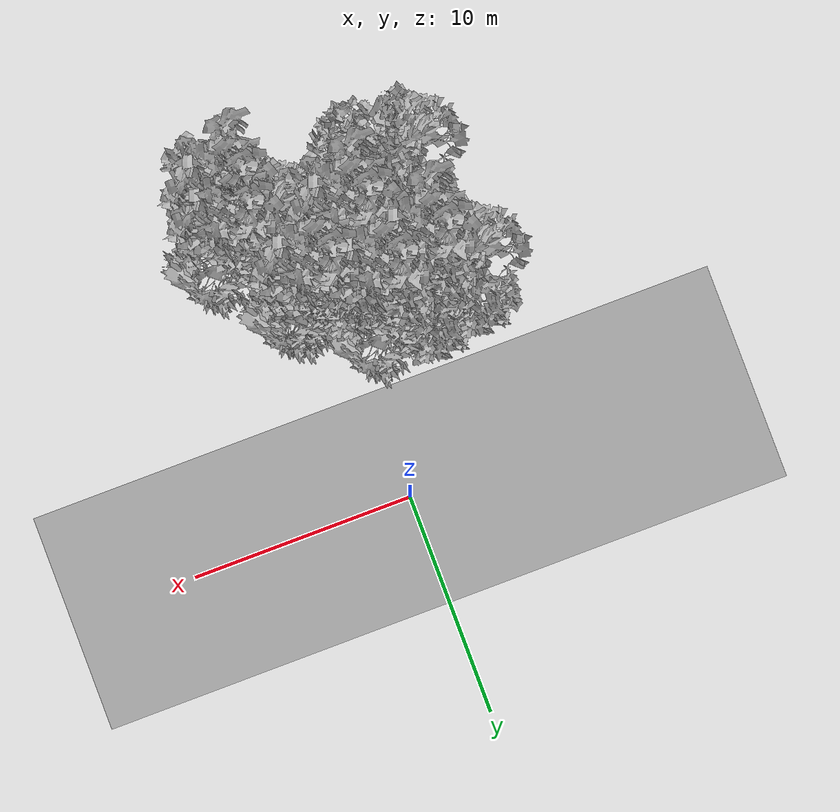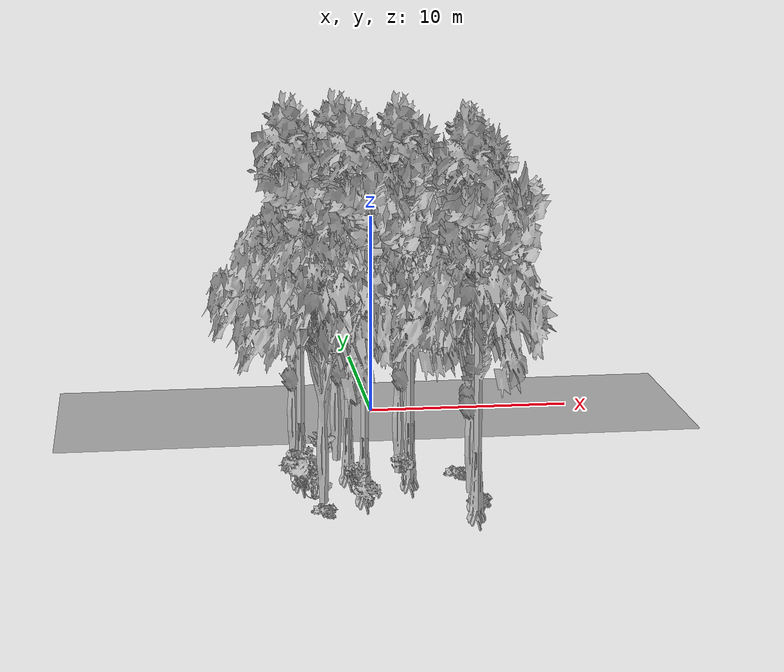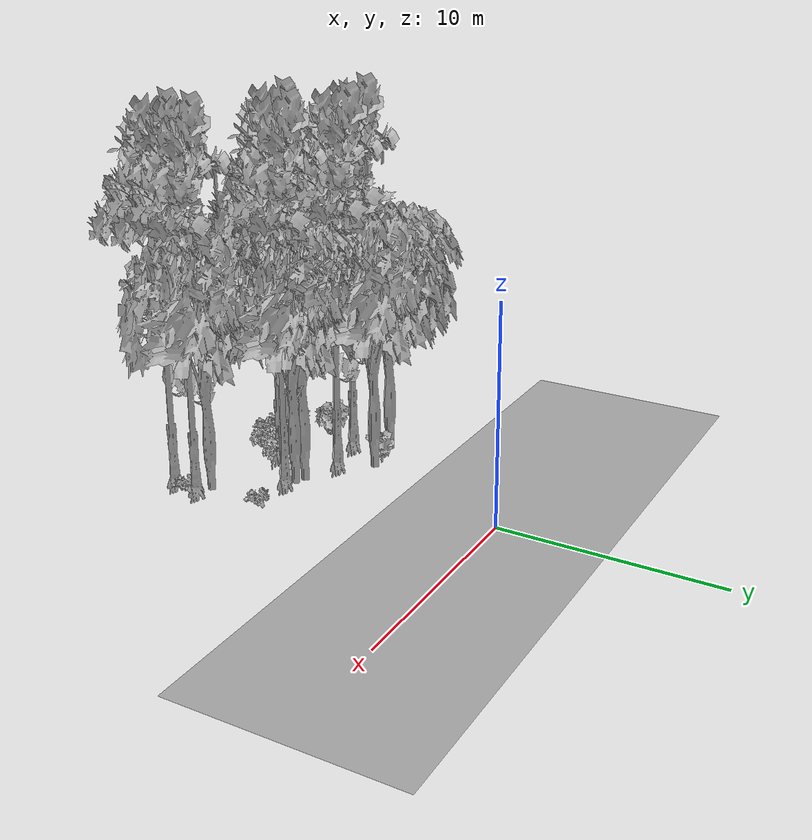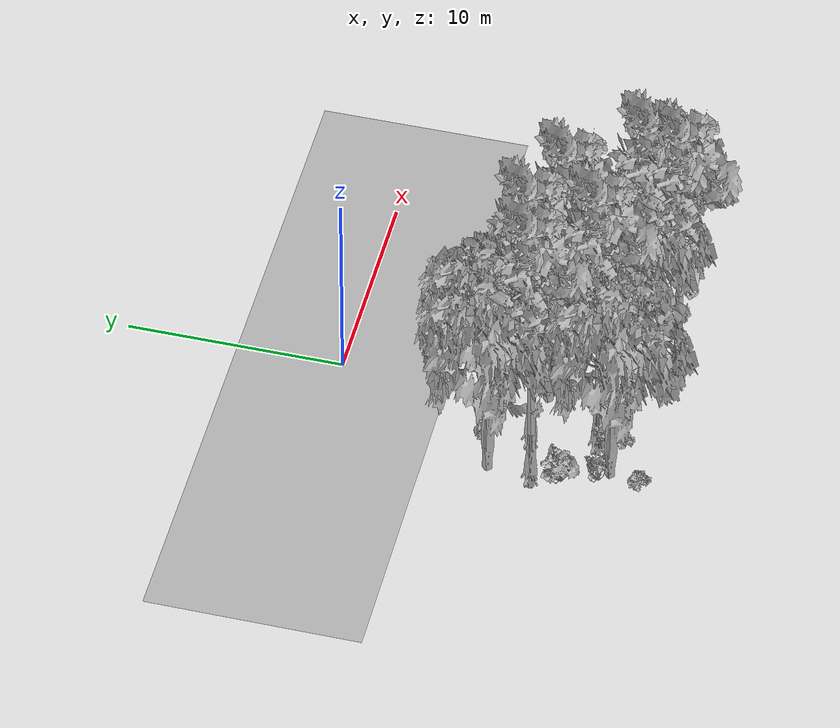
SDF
<sdf version="1.7">
 <world name="default">
  <model name="ground_plane">
   <static>1</static>
   <link name="link">
    <collision name="collision">
     <geometry><plane><normal>0 0 1</normal><size>100 100</size></plane></geometry>
     <surface><contact><ode><min_depth>0.01</min_depth><max_vel>0</max_vel></ode></contact></surface>
    </collision>
    <visual name="grass">
     <cast_shadows>0</cast_shadows>
     <geometry>
      <mesh>
       <scale>0.5814285714285714 0.18142857142857144 0.1</scale>
       <uri>file://grass_plane/meshes/grass_plane.dae</uri>
      </mesh>
     </geometry>
    </visual>
   </link>
  </model>
  <model name="Tree 73">
   <static>1</static>
   <pose>-4.603988198603076 -7.78976772718008 0 1.57079 -0 0</pose>
   <link name="link">
    <collision name="collision">
     <geometry><mesh><scale>3.5 5 3.5</scale><uri>model://tree_2/meshes/tree_2.obj</uri></mesh></geometry>
    </collision>
    <visual name="visual">
     <geometry><mesh><scale>3.5 5 3.5</scale><uri>model://tree_2/meshes/tree_2.obj</uri></mesh></geometry>
    </visual>
   </link>
  </model>
  <model name="Tree 140">
   <static>1</static>
   <pose>2.8255445464476665 -14.750124823121054 0 1.57079 -0 0</pose>
   <link name="link">
    <collision name="collision">
     <geometry><mesh><scale>3.5 5 3.5</scale><uri>model://tree_9/meshes/tree_9.obj</uri></mesh></geometry>
    </collision>
    <visual name="visual">
     <geometry><mesh><scale>3.5 5 3.5</scale><uri>model://tree_9/meshes/tree_9.obj</uri></mesh></geometry>
    </visual>
   </link>
  </model>
  <model name="Tree 162">
   <static>1</static>
   <pose>-3.751485183714408 -13.156626649994562 0 1.57079 -0 0</pose>
   <link name="link">
    <collision name="collision">
     <geometry><mesh><scale>3.5 5 3.5</scale><uri>model://tree_2/meshes/tree_2.obj</uri></mesh></geometry>
    </collision>
    <visual name="visual">
     <geometry><mesh><scale>3.5 5 3.5</scale><uri>model://tree_2/meshes/tree_2.obj</uri></mesh></geometry>
    </visual>
   </link>
  </model>
  <model name="Tree 232">
   <static>1</static>
   <pose>0.05023212983814318 -9.489935559217717 0 1.57079 -0 0</pose>
   <link name="link">
    <collision name="collision">
     <geometry><mesh><scale>3.5 5 3.5</scale><uri>model://tree_2/meshes/tree_2.obj</uri></mesh></geometry>
    </collision>
    <visual name="visual">
     <geometry><mesh><scale>3.5 5 3.5</scale><uri>model://tree_2/meshes/tree_2.obj</uri></mesh></geometry>
    </visual>
   </link>
  </model>
  <model name="Tree 270">
   <static>1</static>
   <pose>-2.1550973484761187 -9.197895704591286 0 1.57079 -0 0</pose>
   <link name="link">
    <collision name="collision">
     <geometry><mesh><scale>3.5 5 3.5</scale><uri>model://tree_9/meshes/tree_9.obj</uri></mesh></geometry>
    </collision>
    <visual name="visual">
     <geometry><mesh><scale>3.5 5 3.5</scale><uri>model://tree_9/meshes/tree_9.obj</uri></mesh></geometry>
    </visual>
   </link>
  </model>
  <model name="Tree 353">
   <static>1</static>
   <pose>0.5238656328667588 -10.318006733208723 0 1.57079 -0 0</pose>
   <link name="link">
    <collision name="collision">
     <geometry><mesh><scale>3.5 5 3.5</scale><uri>model://tree_9/meshes/tree_9.obj</uri></mesh></geometry>
    </collision>
    <visual name="visual">
     <geometry><mesh><scale>3.5 5 3.5</scale><uri>model://tree_9/meshes/tree_9.obj</uri></mesh></geometry>
    </visual>
   </link>
  </model>
  <model name="Tree 370">
   <static>1</static>
   <pose>3.0562831345720767 -13.35161339124226 0 1.57079 -0 0</pose>
   <link name="link">
    <collision name="collision">
     <geometry><mesh><scale>3.5 5 3.5</scale><uri>model://tree_9/meshes/tree_9.obj</uri></mesh></geometry>
    </collision>
    <visual name="visual">
     <geometry><mesh><scale>3.5 5 3.5</scale><uri>model://tree_9/meshes/tree_9.obj</uri></mesh></geometry>
    </visual>
   </link>
  </model>
  <model name="Tree 376">
   <static>1</static>
   <pose>-2.592192265908814 -7.419772875265309 0 1.57079 -0 0</pose>
   <link name="link">
    <collision name="collision">
     <geometry><mesh><scale>3.5 5 3.5</scale><uri>model://tree_2/meshes/tree_2.obj</uri></mesh></geometry>
    </collision>
    <visual name="visual">
     <geometry><mesh><scale>3.5 5 3.5</scale><uri>model://tree_2/meshes/tree_2.obj</uri></mesh></geometry>
    </visual>
   </link>
  </model>
  <model name="Tree 385">
   <static>1</static>
   <pose>0.5056600470343042 -9.68909409508705 0 1.57079 -0 0</pose>
   <link name="link">
    <collision name="collision">
     <geometry><mesh><scale>3.5 5 3.5</scale><uri>model://tree_2/meshes/tree_2.obj</uri></mesh></geometry>
    </collision>
    <visual name="visual">
     <geometry><mesh><scale>3.5 5 3.5</scale><uri>model://tree_2/meshes/tree_2.obj</uri></mesh></geometry>
    </visual>
   </link>
  </model>
  <model name="Tree 396">
   <static>1</static>
   <pose>-4.353938176681844 -9.70712114378107 0 1.57079 -0 0</pose>
   <link name="link">
    <collision name="collision">
     <geometry><mesh><scale>3.5 5 3.5</scale><uri>model://tree_9/meshes/tree_9.obj</uri></mesh></geometry>
    </collision>
    <visual name="visual">
     <geometry><mesh><scale>3.5 5 3.5</scale><uri>model://tree_9/meshes/tree_9.obj</uri></mesh></geometry>
    </visual>
   </link>
  </model>
  <model name="Tree 422">
   <static>1</static>
   <pose>-1.7455986087299067 -12.158941165423766 0 1.57079 -0 0</pose>
   <link name="link">
    <collision name="collision">
     <geometry><mesh><scale>3.5 5 3.5</scale><uri>model://tree_9/meshes/tree_9.obj</uri></mesh></geometry>
    </collision>
    <visual name="visual">
     <geometry><mesh><scale>3.5 5 3.5</scale><uri>model://tree_9/meshes/tree_9.obj</uri></mesh></geometry>
    </visual>
   </link>
  </model>
  <model name="Tree 436">
   <static>1</static>
   <pose>2.8407390285196357 -12.59180163920816 0 1.57079 -0 0</pose>
   <link name="link">
    <collision name="collision">
     <geometry><mesh><scale>3.5 5 3.5</scale><uri>model://tree_2/meshes/tree_2.obj</uri></mesh></geometry>
    </collision>
    <visual name="visual">
     <geometry><mesh><scale>3.5 5 3.5</scale><uri>model://tree_2/meshes/tree_2.obj</uri></mesh></geometry>
    </visual>
   </link>
  </model>
  <model name="Bush 13">
   <static>1</static>
   <pose>3.1003087571818 -13.923612825785902 0 1.57079 -0 0</pose>
   <link name="link">
    <collision name="collision">
     <geometry><mesh><scale>2 2 2</scale><uri>model://bush_2/meshes/bush_2.obj</uri></mesh></geometry>
     <surface><contact><collide_without_contact>false</collide_without_contact></contact></surface>
    </collision>
    <visual name="visual">
     <geometry><mesh><scale>2 2 2</scale><uri>model://bush_2/meshes/bush_2.obj</uri></mesh></geometry>
    </visual>
   </link>
  </model>
  <model name="Bush 25">
   <static>1</static>
   <pose>-3.7490700589717605 -14.492991617010333 0 1.57079 -0 0</pose>
   <link name="link">
    <collision name="collision">
     <geometry><mesh><scale>2 2 2</scale><uri>model://bush_2/meshes/bush_2.obj</uri></mesh></geometry>
     <surface><contact><collide_without_contact>false</collide_without_contact></contact></surface>
    </collision>
    <visual name="visual">
     <geometry><mesh><scale>2 2 2</scale><uri>model://bush_2/meshes/bush_2.obj</uri></mesh></geometry>
    </visual>
   </link>
  </model>
  <model name="Bush 30">
   <static>1</static>
   <pose>2.6609303245029423 -10.28661611896213 0 1.57079 -0 0</pose>
   <link name="link">
    <collision name="collision">
     <geometry><mesh><scale>2 2 2</scale><uri>model://bush_2/meshes/bush_2.obj</uri></mesh></geometry>
     <surface><contact><collide_without_contact>false</collide_without_contact></contact></surface>
    </collision>
    <visual name="visual">
     <geometry><mesh><scale>2 2 2</scale><uri>model://bush_2/meshes/bush_2.obj</uri></mesh></geometry>
    </visual>
   </link>
  </model>
  <model name="Bush 54">
   <static>1</static>
   <pose>-1.7110182620888565 -13.16120575066697 0 1.57079 -0 0</pose>
   <link name="link">
    <collision name="collision">
     <geometry><mesh><scale>2 2 2</scale><uri>model://bush_3/meshes/bush_3.obj</uri></mesh></geometry>
     <surface><contact><collide_without_contact>false</collide_without_contact></contact></surface>
    </collision>
    <visual name="visual">
     <geometry><mesh><scale>2 2 2</scale><uri>model://bush_3/meshes/bush_3.obj</uri></mesh></geometry>
    </visual>
   </link>
  </model>
  <model name="Bush 72">
   <static>1</static>
   <pose>-2.082320590253495 -12.312194535127606 0 1.57079 -0 0</pose>
   <link name="link">
    <collision name="collision">
     <geometry><mesh><scale>2 2 2</scale><uri>model://bush_5/meshes/bush_5.obj</uri></mesh></geometry>
     <surface><contact><collide_without_contact>false</collide_without_contact></contact></surface>
    </collision>
    <visual name="visual">
     <geometry><mesh><scale>2 2 2</scale><uri>model://bush_5/meshes/bush_5.obj</uri></mesh></geometry>
    </visual>
   </link>
  </model>
  <model name="Bush 92">
   <static>1</static>
   <pose>0.10987918763008508 -11.322314177510524 0 1.57079 -0 0</pose>
   <link name="link">
    <collision name="collision">
     <geometry><mesh><scale>2 2 2</scale><uri>model://bush_5/meshes/bush_5.obj</uri></mesh></geometry>
     <surface><contact><collide_without_contact>false</collide_without_contact></contact></surface>
    </collision>
    <visual name="visual">
     <geometry><mesh><scale>2 2 2</scale><uri>model://bush_5/meshes/bush_5.obj</uri></mesh></geometry>
    </visual>
   </link>
  </model>
  <model name="Bush 203">
   <static>1</static>
   <pose>-4.463436131800002 -11.035052726794941 0 1.57079 -0 0</pose>
   <link name="link">
    <collision name="collision">
     <geometry><mesh><scale>2 2 2</scale><uri>model://bush_4/meshes/bush_4.obj</uri></mesh></geometry>
     <surface><contact><collide_without_contact>false</collide_without_contact></contact></surface>
    </collision>
    <visual name="visual">
     <geometry><mesh><scale>2 2 2</scale><uri>model://bush_4/meshes/bush_4.obj</uri></mesh></geometry>
    </visual>
   </link>
  </model>
  <model name="Bush 222">
   <static>1</static>
   <pose>-3.997254779514094 -12.633905110400853 0 1.57079 -0 0</pose>
   <link name="link">
    <collision name="collision">
     <geometry><mesh><scale>2 2 2</scale><uri>model://bush_4/meshes/bush_4.obj</uri></mesh></geometry>
     <surface><contact><collide_without_contact>false</collide_without_contact></contact></surface>
    </collision>
    <visual name="visual">
     <geometry><mesh><scale>2 2 2</scale><uri>model://bush_4/meshes/bush_4.obj</uri></mesh></geometry>
    </visual>
   </link>
  </model>
  <model name="Bush 281">
   <static>1</static>
   <pose>-4.507492674223535 -11.14401251019073 0 1.57079 -0 0</pose>
   <link name="link">
    <collision name="collision">
     <geometry><mesh><scale>2 2 2</scale><uri>model://bush_1/meshes/bush_1.obj</uri></mesh></geometry>
     <surface><contact><collide_without_contact>false</collide_without_contact></contact></surface>
    </collision>
    <visual name="visual">
     <geometry><mesh><scale>2 2 2</scale><uri>model://bush_1/meshes/bush_1.obj</uri></mesh></geometry>
    </visual>
   </link>
  </model>
  <model name="Bush 309">
   <static>1</static>
   <pose>-2.9758910215454364 -7.28452140786669 0 1.57079 -0 0</pose>
   <link name="link">
    <collision name="collision">
     <geometry><mesh><scale>2 2 2</scale><uri>model://bush_0/meshes/bush_0.obj</uri></mesh></geometry>
     <surface><contact><collide_without_contact>false</collide_without_contact></contact></surface>
    </collision>
    <visual name="visual">
     <geometry><mesh><scale>2 2 2</scale><uri>model://bush_0/meshes/bush_0.obj</uri></mesh></geometry>
    </visual>
   </link>
  </model>
 </world>
</sdf>
